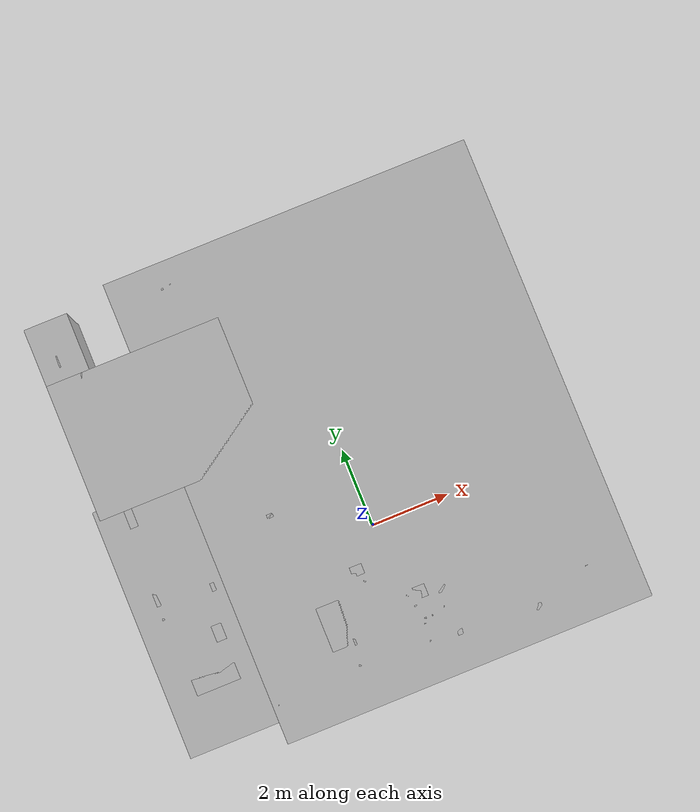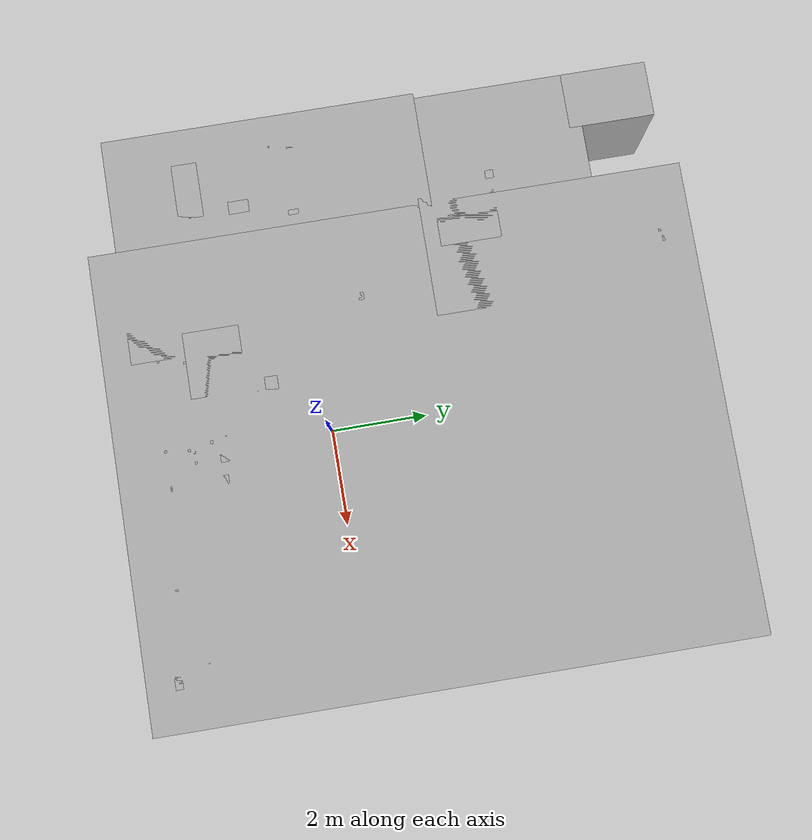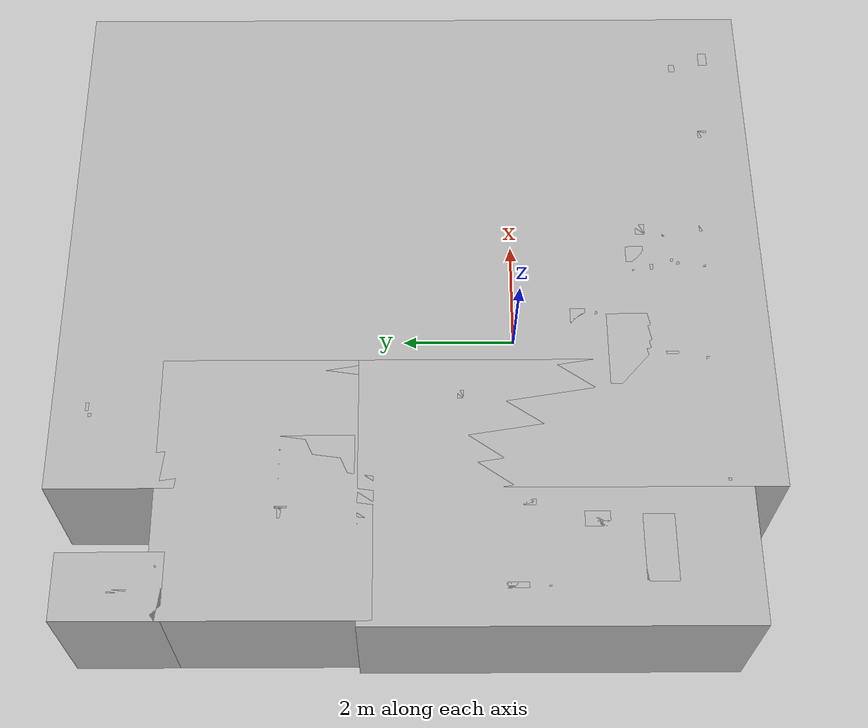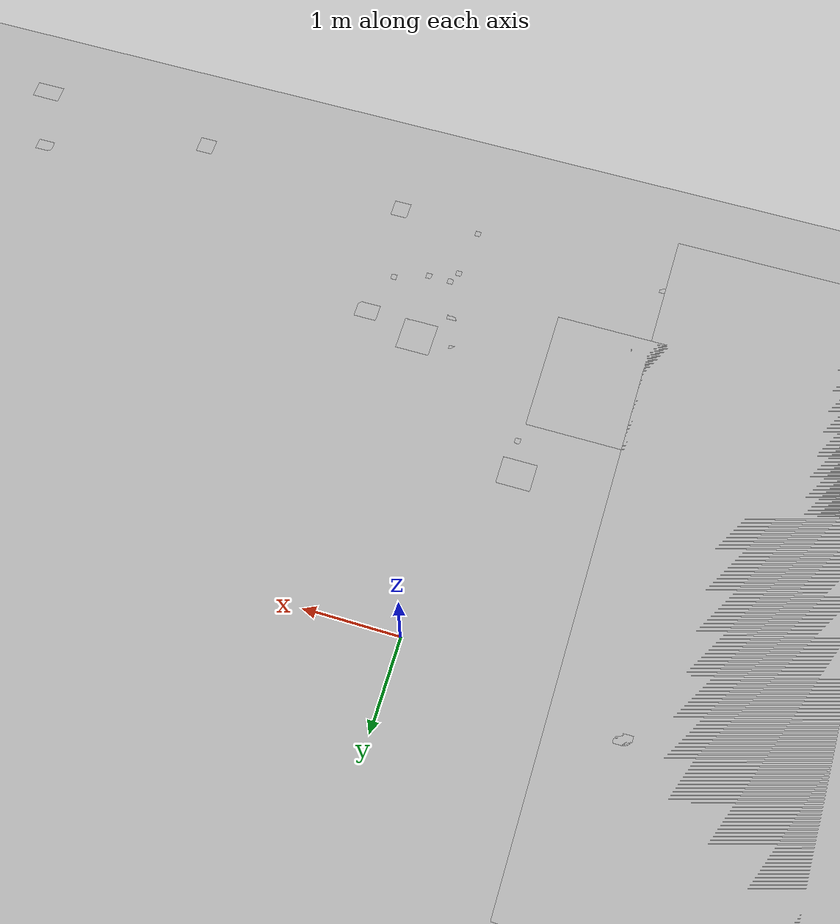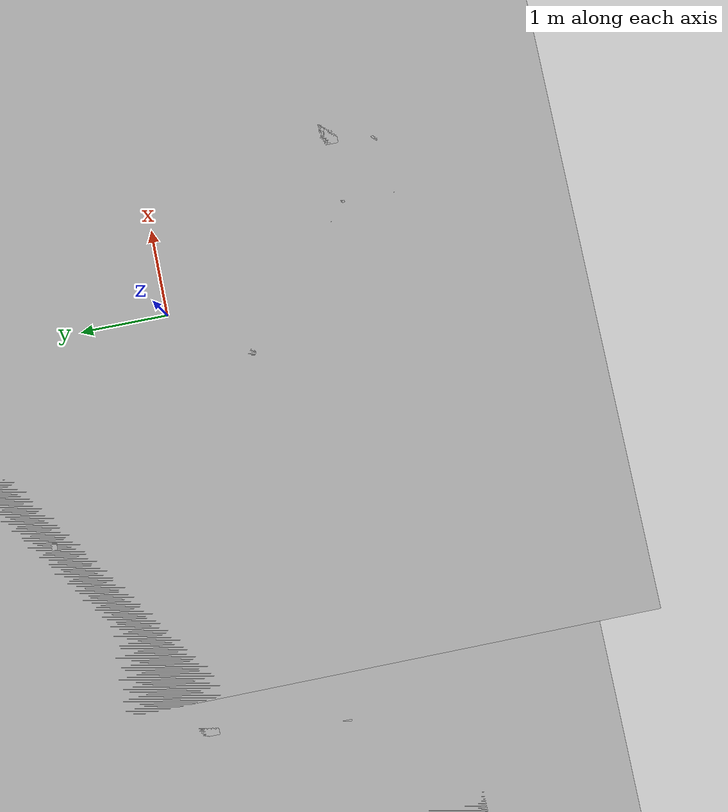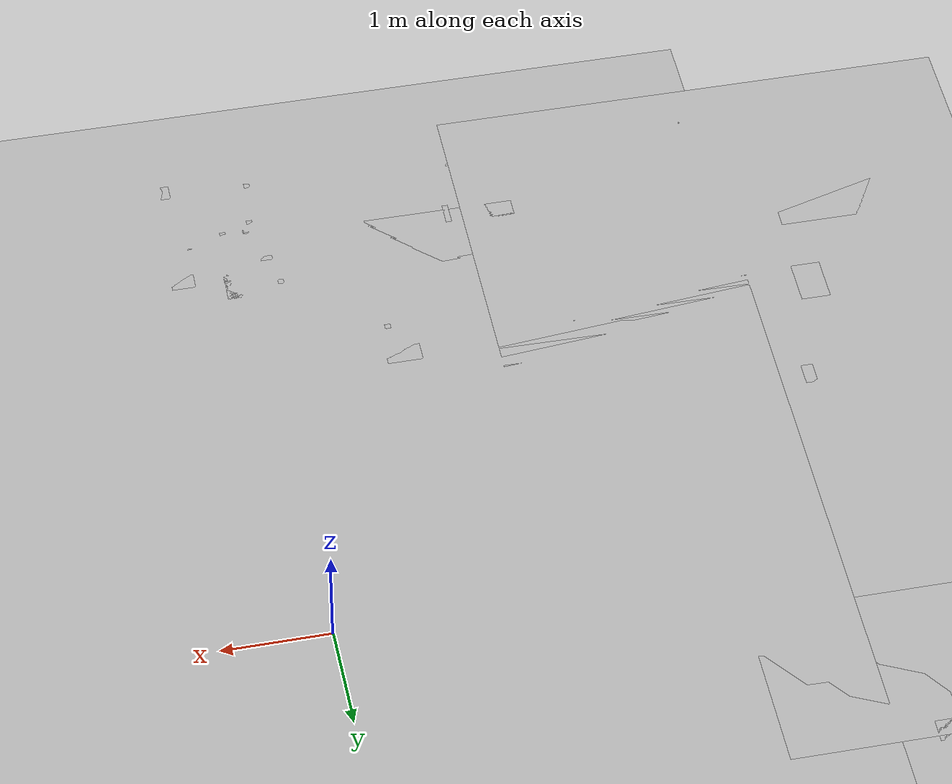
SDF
<?xml version="1.0"?><sdf version="1.9"><world name="map_world">
    <model name="wall_1">
      <static>true</static>
      <pose>0.789 1.805 1.250 0 0 0</pose>
      <link name="link">
        <collision name="collision">
          <geometry><box><size>9.300 11.750 2.500</size></box></geometry>
        </collision>
        <visual name="visual">
          <geometry><box><size>9.300 11.750 2.500</size></box></geometry>
        </visual>
      </link>
    </model>

    <model name="wall_2">
      <static>true</static>
      <pose>-5.461 6.530 1.250 0 0 0</pose>
      <link name="link">
        <collision name="collision">
          <geometry><box><size>1.100 1.700 2.500</size></box></geometry>
        </collision>
        <visual name="visual">
          <geometry><box><size>1.100 1.700 2.500</size></box></geometry>
        </visual>
      </link>
    </model>

    <model name="wall_3">
      <static>true</static>
      <pose>-2.436 7.105 1.250 0 0 0</pose>
      <link name="link">
        <collision name="collision">
          <geometry><box><size>0.150 0.050 2.500</size></box></geometry>
        </collision>
        <visual name="visual">
          <geometry><box><size>0.150 0.050 2.500</size></box></geometry>
        </visual>
      </link>
    </model>

    <model name="wall_4">
      <static>true</static>
      <pose>-2.586 7.055 1.250 0 0 0</pose>
      <link name="link">
        <collision name="collision">
          <geometry><box><size>0.050 0.050 2.500</size></box></geometry>
        </collision>
        <visual name="visual">
          <geometry><box><size>0.050 0.050 2.500</size></box></geometry>
        </visual>
      </link>
    </model>

    <model name="wall_5">
      <static>true</static>
      <pose>-5.536 6.380 1.250 0 0 0</pose>
      <link name="link">
        <collision name="collision">
          <geometry><box><size>0.050 0.300 2.500</size></box></geometry>
        </collision>
        <visual name="visual">
          <geometry><box><size>0.050 0.300 2.500</size></box></geometry>
        </visual>
      </link>
    </model>

    <model name="wall_6">
      <static>true</static>
      <pose>-5.136 5.855 1.250 0 0 0</pose>
      <link name="link">
        <collision name="collision">
          <geometry><box><size>0.050 0.150 2.500</size></box></geometry>
        </collision>
        <visual name="visual">
          <geometry><box><size>0.050 0.150 2.500</size></box></geometry>
        </visual>
      </link>
    </model>

    <model name="wall_7">
      <static>true</static>
      <pose>-3.811 4.205 1.250 0 0 0</pose>
      <link name="link">
        <collision name="collision">
          <geometry><box><size>4.400 3.450 2.500</size></box></geometry>
        </collision>
        <visual name="visual">
          <geometry><box><size>4.400 3.450 2.500</size></box></geometry>
        </visual>
      </link>
    </model>

    <model name="wall_8">
      <static>true</static>
      <pose>-4.261 3.930 1.250 0 0 0</pose>
      <link name="link">
        <collision name="collision">
          <geometry><box><size>0.200 0.200 2.500</size></box></geometry>
        </collision>
        <visual name="visual">
          <geometry><box><size>0.200 0.200 2.500</size></box></geometry>
        </visual>
      </link>
    </model>

    <model name="wall_9">
      <static>true</static>
      <pose>-3.661 3.380 1.250 0 0 0</pose>
      <link name="link">
        <collision name="collision">
          <geometry><box><size>1.400 1.200 2.500</size></box></geometry>
        </collision>
        <visual name="visual">
          <geometry><box><size>1.400 1.200 2.500</size></box></geometry>
        </visual>
      </link>
    </model>

    <model name="wall_10">
      <static>true</static>
      <pose>-3.861 -0.395 1.250 0 0 0</pose>
      <link name="link">
        <collision name="collision">
          <geometry><box><size>4.500 6.250 2.500</size></box></geometry>
        </collision>
        <visual name="visual">
          <geometry><box><size>4.500 6.250 2.500</size></box></geometry>
        </visual>
      </link>
    </model>

    <model name="wall_11">
      <static>true</static>
      <pose>-5.311 2.280 1.250 0 0 0</pose>
      <link name="link">
        <collision name="collision">
          <geometry><box><size>0.200 0.500 2.500</size></box></geometry>
        </collision>
        <visual name="visual">
          <geometry><box><size>0.200 0.500 2.500</size></box></geometry>
        </visual>
      </link>
    </model>

    <model name="wall_12">
      <static>true</static>
      <pose>-2.236 1.080 1.250 0 0 0</pose>
      <link name="link">
        <collision name="collision">
          <geometry><box><size>0.150 0.100 2.500</size></box></geometry>
        </collision>
        <visual name="visual">
          <geometry><box><size>0.150 0.100 2.500</size></box></geometry>
        </visual>
      </link>
    </model>

    <model name="wall_13">
      <static>true</static>
      <pose>-5.461 0.255 1.250 0 0 0</pose>
      <link name="link">
        <collision name="collision">
          <geometry><box><size>0.100 0.350 2.500</size></box></geometry>
        </collision>
        <visual name="visual">
          <geometry><box><size>0.100 0.350 2.500</size></box></geometry>
        </visual>
      </link>
    </model>

    <model name="wall_14">
      <static>true</static>
      <pose>-4.111 0.030 1.250 0 0 0</pose>
      <link name="link">
        <collision name="collision">
          <geometry><box><size>0.100 0.200 2.500</size></box></geometry>
        </collision>
        <visual name="visual">
          <geometry><box><size>0.100 0.200 2.500</size></box></geometry>
        </visual>
      </link>
    </model>

    <model name="wall_15">
      <static>true</static>
      <pose>-5.486 -0.245 1.250 0 0 0</pose>
      <link name="link">
        <collision name="collision">
          <geometry><box><size>0.050 0.050 2.500</size></box></geometry>
        </collision>
        <visual name="visual">
          <geometry><box><size>0.050 0.050 2.500</size></box></geometry>
        </visual>
      </link>
    </model>

    <model name="wall_16">
      <static>true</static>
      <pose>-0.811 -0.895 1.250 0 0 0</pose>
      <link name="link">
        <collision name="collision">
          <geometry><box><size>0.300 0.250 2.500</size></box></geometry>
        </collision>
        <visual name="visual">
          <geometry><box><size>0.300 0.250 2.500</size></box></geometry>
        </visual>
      </link>
    </model>

    <model name="wall_17">
      <static>true</static>
      <pose>-4.386 -1.020 1.250 0 0 0</pose>
      <link name="link">
        <collision name="collision">
          <geometry><box><size>0.250 0.400 2.500</size></box></geometry>
        </collision>
        <visual name="visual">
          <geometry><box><size>0.250 0.400 2.500</size></box></geometry>
        </visual>
      </link>
    </model>

    <model name="wall_18">
      <static>true</static>
      <pose>-0.736 -1.195 1.250 0 0 0</pose>
      <link name="link">
        <collision name="collision">
          <geometry><box><size>0.050 0.050 2.500</size></box></geometry>
        </collision>
        <visual name="visual">
          <geometry><box><size>0.050 0.050 2.500</size></box></geometry>
        </visual>
      </link>
    </model>

    <model name="wall_19">
      <static>true</static>
      <pose>-1.411 -1.920 1.250 0 0 0</pose>
      <link name="link">
        <collision name="collision">
          <geometry><box><size>1.300 1.100 2.500</size></box></geometry>
        </collision>
        <visual name="visual">
          <geometry><box><size>1.300 1.100 2.500</size></box></geometry>
        </visual>
      </link>
    </model>

    <model name="wall_20">
      <static>true</static>
      <pose>-4.861 -1.970 1.250 0 0 0</pose>
      <link name="link">
        <collision name="collision">
          <geometry><box><size>1.100 0.500 2.500</size></box></geometry>
        </collision>
        <visual name="visual">
          <geometry><box><size>1.100 0.500 2.500</size></box></geometry>
        </visual>
      </link>
    </model>

    <model name="wall_21">
      <static>true</static>
      <pose>0.389 -1.920 1.250 0 0 0</pose>
      <link name="link">
        <collision name="collision">
          <geometry><box><size>0.300 0.300 2.500</size></box></geometry>
        </collision>
        <visual name="visual">
          <geometry><box><size>0.300 0.300 2.500</size></box></geometry>
        </visual>
      </link>
    </model>

    <model name="wall_22">
      <static>true</static>
      <pose>0.064 -1.895 1.250 0 0 0</pose>
      <link name="link">
        <collision name="collision">
          <geometry><box><size>0.050 0.050 2.500</size></box></geometry>
        </collision>
        <visual name="visual">
          <geometry><box><size>0.050 0.050 2.500</size></box></geometry>
        </visual>
      </link>
    </model>

    <model name="wall_23">
      <static>true</static>
      <pose>0.889 -2.045 1.250 0 0 0</pose>
      <link name="link">
        <collision name="collision">
          <geometry><box><size>0.200 0.150 2.500</size></box></geometry>
        </collision>
        <visual name="visual">
          <geometry><box><size>0.200 0.150 2.500</size></box></geometry>
        </visual>
      </link>
    </model>

    <model name="wall_24">
      <static>true</static>
      <pose>0.139 -2.195 1.250 0 0 0</pose>
      <link name="link">
        <collision name="collision">
          <geometry><box><size>0.100 0.050 2.500</size></box></geometry>
        </collision>
        <visual name="visual">
          <geometry><box><size>0.100 0.050 2.500</size></box></geometry>
        </visual>
      </link>
    </model>

    <model name="wall_25">
      <static>true</static>
      <pose>-1.486 -2.420 1.250 0 0 0</pose>
      <link name="link">
        <collision name="collision">
          <geometry><box><size>0.050 0.200 2.500</size></box></geometry>
        </collision>
        <visual name="visual">
          <geometry><box><size>0.050 0.200 2.500</size></box></geometry>
        </visual>
      </link>
    </model>

    <model name="wall_26">
      <static>true</static>
      <pose>0.764 -2.445 1.250 0 0 0</pose>
      <link name="link">
        <collision name="collision">
          <geometry><box><size>0.050 0.050 2.500</size></box></geometry>
        </collision>
        <visual name="visual">
          <geometry><box><size>0.050 0.050 2.500</size></box></geometry>
        </visual>
      </link>
    </model>

    <model name="wall_27">
      <static>true</static>
      <pose>0.264 -2.545 1.250 0 0 0</pose>
      <link name="link">
        <collision name="collision">
          <geometry><box><size>0.050 0.050 2.500</size></box></geometry>
        </collision>
        <visual name="visual">
          <geometry><box><size>0.050 0.050 2.500</size></box></geometry>
        </visual>
      </link>
    </model>

    <model name="wall_28">
      <static>true</static>
      <pose>0.464 -2.545 1.250 0 0 0</pose>
      <link name="link">
        <collision name="collision">
          <geometry><box><size>0.050 0.050 2.500</size></box></geometry>
        </collision>
        <visual name="visual">
          <geometry><box><size>0.050 0.050 2.500</size></box></geometry>
        </visual>
      </link>
    </model>

    <model name="wall_29">
      <static>true</static>
      <pose>0.214 -2.645 1.250 0 0 0</pose>
      <link name="link">
        <collision name="collision">
          <geometry><box><size>0.050 0.050 2.500</size></box></geometry>
        </collision>
        <visual name="visual">
          <geometry><box><size>0.050 0.050 2.500</size></box></geometry>
        </visual>
      </link>
    </model>

    <model name="wall_30">
      <static>true</static>
      <pose>4.314 -2.870 1.250 0 0 0</pose>
      <link name="link">
        <collision name="collision">
          <geometry><box><size>0.150 0.100 2.500</size></box></geometry>
        </collision>
        <visual name="visual">
          <geometry><box><size>0.150 0.100 2.500</size></box></geometry>
        </visual>
      </link>
    </model>

    <model name="wall_31">
      <static>true</static>
      <pose>-1.586 -2.995 1.250 0 0 0</pose>
      <link name="link">
        <collision name="collision">
          <geometry><box><size>0.050 0.050 2.500</size></box></geometry>
        </collision>
        <visual name="visual">
          <geometry><box><size>0.050 0.050 2.500</size></box></geometry>
        </visual>
      </link>
    </model>

    <model name="wall_32">
      <static>true</static>
      <pose>0.164 -3.095 1.250 0 0 0</pose>
      <link name="link">
        <collision name="collision">
          <geometry><box><size>0.050 0.050 2.500</size></box></geometry>
        </collision>
        <visual name="visual">
          <geometry><box><size>0.050 0.050 2.500</size></box></geometry>
        </visual>
      </link>
    </model>

    <model name="wall_33">
      <static>true</static>
      <pose>0.914 -3.145 1.250 0 0 0</pose>
      <link name="link">
        <collision name="collision">
          <geometry><box><size>0.150 0.150 2.500</size></box></geometry>
        </collision>
        <visual name="visual">
          <geometry><box><size>0.150 0.150 2.500</size></box></geometry>
        </visual>
      </link>
    </model>

    <model name="wall_34">
      <static>true</static>
      <pose>-3.736 -3.145 1.250 0 0 0</pose>
      <link name="link">
        <collision name="collision">
          <geometry><box><size>0.050 0.050 2.500</size></box></geometry>
        </collision>
        <visual name="visual">
          <geometry><box><size>0.050 0.050 2.500</size></box></geometry>
        </visual>
      </link>
    </model>

    <model name="wall_35">
      <static>true</static>
      <pose>2.864 -3.295 1.250 0 0 0</pose>
      <link name="link">
        <collision name="collision">
          <geometry><box><size>0.150 0.150 2.500</size></box></geometry>
        </collision>
        <visual name="visual">
          <geometry><box><size>0.150 0.150 2.500</size></box></geometry>
        </visual>
      </link>
    </model>

    <model name="wall_36">
      <static>true</static>
      <pose>4.514 -3.445 1.250 0 0 0</pose>
      <link name="link">
        <collision name="collision">
          <geometry><box><size>0.250 0.150 2.500</size></box></geometry>
        </collision>
        <visual name="visual">
          <geometry><box><size>0.250 0.150 2.500</size></box></geometry>
        </visual>
      </link>
    </model>
</world></sdf>
